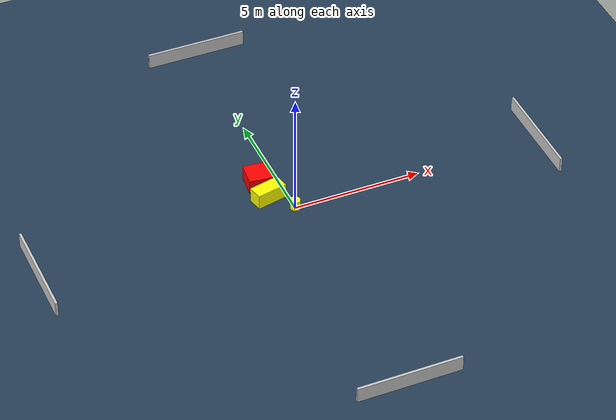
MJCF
<?xml version="1.0" ?>
<mujoco model="generated_environment">
  <option timestep="0.01" integrator="RK4" cone="elliptic"/>
  <default>
    <geom density="1"/>
  </default>
  <asset>
    <texture builtin="gradient" height="3072" name="skybox" rgb1="0.3 0.5 0.7" rgb2="0 0 0" type="skybox" width="512"/>
    <texture builtin="checker" height="300" name="groundplane" rgb1="0.2 0.3 0.4" rgb2="0.1 0.2 0.3" type="2d" width="300"/>
    <material name="groundplane" reflectance="0.2" texrepeat="5 5" texture="groundplane"/>
  </asset>
  <worldbody>
    <light dir="0 0 -1" directional="true" pos="0 0 1.5"/>
    <geom condim="3" friction="0.5 0.005 0.001" material="groundplane" name="floor" pos="0 0 0" size="0 0 0.05" type="plane"/>
    <body name="walls">
      <geom name="wall_1" condim="4" pos="-10.0 0.0 0.3" rgba="0.800000011920929 0.800000011920929 0.800000011920929 1.0" size="0.05 2.0 0.3" type="box"/>
      <geom name="wall_2" condim="4" pos="10.0 0.0 0.3" rgba="0.800000011920929 0.800000011920929 0.800000011920929 1.0" size="0.05 2.0 0.3" type="box"/>
      <geom name="wall_3" condim="4" pos="0.0 -10.0 0.3" rgba="0.800000011920929 0.800000011920929 0.800000011920929 1.0" size="2.0 0.05 0.3" type="box"/>
      <geom name="wall_4" condim="4" pos="0.0 10.0 0.3" rgba="0.800000011920929 0.800000011920929 0.800000011920929 1.0" size="2.0 0.05 0.3" type="box"/>
    </body>
    <body name="robot">
      <joint name="joint_x" type="slide" pos="0 0 0" axis="1 0 0"/>
      <joint name="joint_y" type="slide" pos="0 0 0" axis="0 1 0"/>
      <geom name="robot" type="cylinder" pos="0.0 0.0 0.2" size="0.2 0.2 0.0" mass="5.0" friction="1.0 0.005 0.0001" condim="4" rgba="1.0 1.0 0.0 1.0"/>
    </body>
    <body name="obstacle_1_movable">
      <geom name="obstacle_1_movable" condim="4" pos="-0.7204090671504255 0.8683562025048643 0.3" euler="0 0 282.26390711493855" friction="0.0 0.005 0.001" rgba="1.0 1.0 0.0 1.0" size="0.28724259448940637 0.60601120762112 0.3" type="box" mass="0.1"/>
      <joint type="free"/>
    </body>
    <body name="obstacle_2_static">
      <geom name="obstacle_2_static" condim="4" pos="-0.7590959817365986 1.794291586624436 0.3" euler="0 0 84.24329119411644" friction="0.0 0.005 0.001" rgba="1.0 0.0 0.0 1.0" size="0.47085779459566623 0.45051114523921704 0.3" type="box"/>
    </body>
  </worldbody>
  <actuator>
    <motor name="actuator_x" joint="joint_x" gear="1" ctrlrange="-1 1"/>
    <motor name="actuator_y" joint="joint_y" gear="1" ctrlrange="-1 1"/>
  </actuator>
</mujoco>
